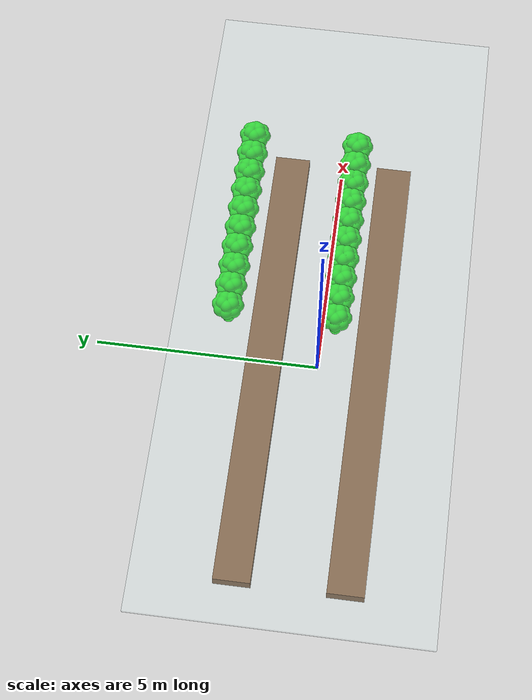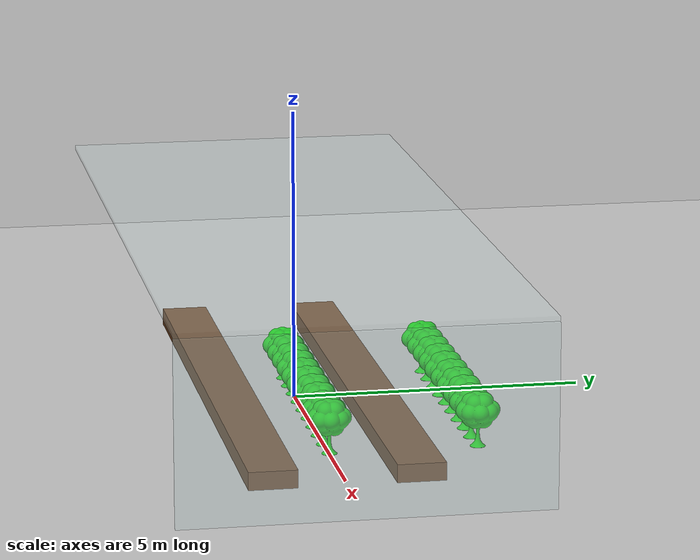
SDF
<sdf version="1.11">
 <world name="greenhouse_world">
  <model name="ground_plane">
   <static>true</static>
   <link name="link">
    <collision name="collision">
     <geometry><plane><normal>0 0 1</normal><size>300 300</size></plane></geometry>
    </collision>
    <visual name="visual">
     <geometry><plane><normal>0 0 1</normal><size>100 100</size></plane></geometry>
     <material>
      <ambient>0.8 0.8 0.8 1</ambient>
      <diffuse>0.8 0.8 0.8 1</diffuse>
      <specular>0.8 0.8 0.8 1</specular>
     </material>
    </visual>
   </link>
  </model>
  <model name="wall_front">
   <static>true</static>
   <pose>7 0 1.5 0 0 0</pose>
   <link name="link">
    <collision name="collision"><geometry><box><size>0.1 6 3.0</size></box></geometry></collision>
    <visual name="visual">
     <geometry><box><size>0.1 6 3.0</size></box></geometry>
     <material>
      <ambient>0.8 0.9 0.9 0.35</ambient>
      <diffuse>0.8 0.9 0.9 0.35</diffuse>
      <specular>0.2 0.2 0.2 0.35</specular>
     </material>
     <transparency>0.5</transparency>
    </visual>
   </link>
  </model>
  <model name="roof">
   <static>true</static>
   <pose>0 0 3.05 0 0 0</pose>
   <link name="link">
    <collision name="collision"><geometry><box><size>14 6 0.08</size></box></geometry></collision>
    <visual name="visual">
     <geometry><box><size>14 6 0.08</size></box></geometry>
     <material>
      <ambient>0.85 0.95 0.95 0.25</ambient>
      <diffuse>0.85 0.95 0.95 0.25</diffuse>
      <specular>0.2 0.2 0.2 0.25</specular>
     </material>
     <transparency>0.6</transparency>
    </visual>
   </link>
  </model>
  <model name="nursery_bed_1">
   <static>true</static>
   <pose>0 1.2 0.15 0 0 0</pose>
   <link name="link">
    <collision name="collision"><geometry><box><size>10.5 0.8 0.3</size></box></geometry></collision>
    <visual name="visual">
     <geometry><box><size>10.5 0.8 0.3</size></box></geometry>
     <material>
      <ambient>0.32 0.18 0.08 1</ambient>
      <diffuse>0.42 0.25 0.12 1</diffuse>
      <specular>0.05 0.05 0.05 1</specular>
     </material>
    </visual>
   </link>
  </model>
  <model name="nursery_bed_2">
   <static>true</static>
   <pose>0 -1.2 0.15 0 0 0</pose>
   <link name="link">
    <collision name="collision"><geometry><box><size>10.5 0.8 0.3</size></box></geometry></collision>
    <visual name="visual">
     <geometry><box><size>10.5 0.8 0.3</size></box></geometry>
     <material>
      <ambient>0.32 0.18 0.08 1</ambient>
      <diffuse>0.42 0.25 0.12 1</diffuse>
      <specular>0.05 0.05 0.05 1</specular>
     </material>
    </visual>
   </link>
  </model>
  <model name="vegetable_crop_r1_11">
   <static>true</static>
   <pose>0.25 1.2 0.30 0 0 0</pose>
   <link name="link">
    <visual name="visual">
     <geometry>
      <mesh>
       <uri>package://chaleBOT_description/worlds/models/vegetable_crop/meshes/vegetable_crop.stl</uri>
       <scale>0.001 0.001 0.001</scale>
      </mesh>
     </geometry>
     <material>
      <ambient>0.0 0.6 0.0 1</ambient>
      <diffuse>0.0 0.8 0.0 1</diffuse>
      <specular>0.1 0.1 0.1 1</specular>
     </material>
    </visual>
    <collision name="collision"><geometry><box><size>0.35 0.35 0.8</size></box></geometry></collision>
   </link>
  </model>
  <model name="vegetable_crop_r1_12">
   <static>true</static>
   <pose>0.75 1.2 0.30 0 0 0</pose>
   <link name="link">
    <visual name="visual">
     <geometry>
      <mesh>
       <uri>package://chaleBOT_description/worlds/models/vegetable_crop/meshes/vegetable_crop.stl</uri>
       <scale>0.001 0.001 0.001</scale>
      </mesh>
     </geometry>
     <material>
      <ambient>0.0 0.6 0.0 1</ambient>
      <diffuse>0.0 0.8 0.0 1</diffuse>
      <specular>0.1 0.1 0.1 1</specular>
     </material>
    </visual>
    <collision name="collision"><geometry><box><size>0.35 0.35 0.8</size></box></geometry></collision>
   </link>
  </model>
  <model name="vegetable_crop_r1_13">
   <static>true</static>
   <pose>1.25 1.2 0.30 0 0 0</pose>
   <link name="link">
    <visual name="visual">
     <geometry>
      <mesh>
       <uri>package://chaleBOT_description/worlds/models/vegetable_crop/meshes/vegetable_crop.stl</uri>
       <scale>0.001 0.001 0.001</scale>
      </mesh>
     </geometry>
     <material>
      <ambient>0.0 0.6 0.0 1</ambient>
      <diffuse>0.0 0.8 0.0 1</diffuse>
      <specular>0.1 0.1 0.1 1</specular>
     </material>
    </visual>
    <collision name="collision"><geometry><box><size>0.35 0.35 0.8</size></box></geometry></collision>
   </link>
  </model>
  <model name="vegetable_crop_r1_14">
   <static>true</static>
   <pose>1.75 1.2 0.30 0 0 0</pose>
   <link name="link">
    <visual name="visual">
     <geometry>
      <mesh>
       <uri>package://chaleBOT_description/worlds/models/vegetable_crop/meshes/vegetable_crop.stl</uri>
       <scale>0.001 0.001 0.001</scale>
      </mesh>
     </geometry>
     <material>
      <ambient>0.0 0.6 0.0 1</ambient>
      <diffuse>0.0 0.8 0.0 1</diffuse>
      <specular>0.1 0.1 0.1 1</specular>
     </material>
    </visual>
    <collision name="collision"><geometry><box><size>0.35 0.35 0.8</size></box></geometry></collision>
   </link>
  </model>
  <model name="vegetable_crop_r1_15">
   <static>true</static>
   <pose>2.25 1.2 0.30 0 0 0</pose>
   <link name="link">
    <visual name="visual">
     <geometry>
      <mesh>
       <uri>package://chaleBOT_description/worlds/models/vegetable_crop/meshes/vegetable_crop.stl</uri>
       <scale>0.001 0.001 0.001</scale>
      </mesh>
     </geometry>
     <material>
      <ambient>0.0 0.6 0.0 1</ambient>
      <diffuse>0.0 0.8 0.0 1</diffuse>
      <specular>0.1 0.1 0.1 1</specular>
     </material>
    </visual>
    <collision name="collision"><geometry><box><size>0.35 0.35 0.8</size></box></geometry></collision>
   </link>
  </model>
  <model name="vegetable_crop_r1_16">
   <static>true</static>
   <pose>2.75 1.2 0.30 0 0 0</pose>
   <link name="link">
    <visual name="visual">
     <geometry>
      <mesh>
       <uri>package://chaleBOT_description/worlds/models/vegetable_crop/meshes/vegetable_crop.stl</uri>
       <scale>0.001 0.001 0.001</scale>
      </mesh>
     </geometry>
     <material>
      <ambient>0.0 0.6 0.0 1</ambient>
      <diffuse>0.0 0.8 0.0 1</diffuse>
      <specular>0.1 0.1 0.1 1</specular>
     </material>
    </visual>
    <collision name="collision"><geometry><box><size>0.35 0.35 0.8</size></box></geometry></collision>
   </link>
  </model>
  <model name="vegetable_crop_r1_17">
   <static>true</static>
   <pose>3.25 1.2 0.30 0 0 0</pose>
   <link name="link">
    <visual name="visual">
     <geometry>
      <mesh>
       <uri>package://chaleBOT_description/worlds/models/vegetable_crop/meshes/vegetable_crop.stl</uri>
       <scale>0.001 0.001 0.001</scale>
      </mesh>
     </geometry>
     <material>
      <ambient>0.0 0.6 0.0 1</ambient>
      <diffuse>0.0 0.8 0.0 1</diffuse>
      <specular>0.1 0.1 0.1 1</specular>
     </material>
    </visual>
    <collision name="collision"><geometry><box><size>0.35 0.35 0.8</size></box></geometry></collision>
   </link>
  </model>
  <model name="vegetable_crop_r1_18">
   <static>true</static>
   <pose>3.75 1.2 0.30 0 0 0</pose>
   <link name="link">
    <visual name="visual">
     <geometry>
      <mesh>
       <uri>package://chaleBOT_description/worlds/models/vegetable_crop/meshes/vegetable_crop.stl</uri>
       <scale>0.001 0.001 0.001</scale>
      </mesh>
     </geometry>
     <material>
      <ambient>0.0 0.6 0.0 1</ambient>
      <diffuse>0.0 0.8 0.0 1</diffuse>
      <specular>0.1 0.1 0.1 1</specular>
     </material>
    </visual>
    <collision name="collision"><geometry><box><size>0.35 0.35 0.8</size></box></geometry></collision>
   </link>
  </model>
  <model name="vegetable_crop_r1_19">
   <static>true</static>
   <pose>4.25 1.2 0.30 0 0 0</pose>
   <link name="link">
    <visual name="visual">
     <geometry>
      <mesh>
       <uri>package://chaleBOT_description/worlds/models/vegetable_crop/meshes/vegetable_crop.stl</uri>
       <scale>0.001 0.001 0.001</scale>
      </mesh>
     </geometry>
     <material>
      <ambient>0.0 0.6 0.0 1</ambient>
      <diffuse>0.0 0.8 0.0 1</diffuse>
      <specular>0.1 0.1 0.1 1</specular>
     </material>
    </visual>
    <collision name="collision"><geometry><box><size>0.35 0.35 0.8</size></box></geometry></collision>
   </link>
  </model>
  <model name="vegetable_crop_r1_20">
   <static>true</static>
   <pose>4.75 1.2 0.30 0 0 0</pose>
   <link name="link">
    <visual name="visual">
     <geometry>
      <mesh>
       <uri>package://chaleBOT_description/worlds/models/vegetable_crop/meshes/vegetable_crop.stl</uri>
       <scale>0.001 0.001 0.001</scale>
      </mesh>
     </geometry>
     <material>
      <ambient>0.0 0.6 0.0 1</ambient>
      <diffuse>0.0 0.8 0.0 1</diffuse>
      <specular>0.1 0.1 0.1 1</specular>
     </material>
    </visual>
    <collision name="collision"><geometry><box><size>0.35 0.35 0.8</size></box></geometry></collision>
   </link>
  </model>
  <model name="vegetable_crop_r2_11">
   <static>true</static>
   <pose>0.25 -1.2 0.30 0 0 0</pose>
   <link name="link">
    <visual name="visual">
     <geometry>
      <mesh>
       <uri>package://chaleBOT_description/worlds/models/vegetable_crop/meshes/vegetable_crop.stl</uri>
       <scale>0.001 0.001 0.001</scale>
      </mesh>
     </geometry>
     <material>
      <ambient>0.0 0.6 0.0 1</ambient>
      <diffuse>0.0 0.8 0.0 1</diffuse>
      <specular>0.1 0.1 0.1 1</specular>
     </material>
    </visual>
    <collision name="collision"><geometry><box><size>0.35 0.35 0.8</size></box></geometry></collision>
   </link>
  </model>
  <model name="vegetable_crop_r2_12">
   <static>true</static>
   <pose>0.75 -1.2 0.30 0 0 0</pose>
   <link name="link">
    <visual name="visual">
     <geometry>
      <mesh>
       <uri>package://chaleBOT_description/worlds/models/vegetable_crop/meshes/vegetable_crop.stl</uri>
       <scale>0.001 0.001 0.001</scale>
      </mesh>
     </geometry>
     <material>
      <ambient>0.0 0.6 0.0 1</ambient>
      <diffuse>0.0 0.8 0.0 1</diffuse>
      <specular>0.1 0.1 0.1 1</specular>
     </material>
    </visual>
    <collision name="collision"><geometry><box><size>0.35 0.35 0.8</size></box></geometry></collision>
   </link>
  </model>
  <model name="vegetable_crop_r2_13">
   <static>true</static>
   <pose>1.25 -1.2 0.30 0 0 0</pose>
   <link name="link">
    <visual name="visual">
     <geometry>
      <mesh>
       <uri>package://chaleBOT_description/worlds/models/vegetable_crop/meshes/vegetable_crop.stl</uri>
       <scale>0.001 0.001 0.001</scale>
      </mesh>
     </geometry>
     <material>
      <ambient>0.0 0.6 0.0 1</ambient>
      <diffuse>0.0 0.8 0.0 1</diffuse>
      <specular>0.1 0.1 0.1 1</specular>
     </material>
    </visual>
    <collision name="collision"><geometry><box><size>0.35 0.35 0.8</size></box></geometry></collision>
   </link>
  </model>
  <model name="vegetable_crop_r2_14">
   <static>true</static>
   <pose>1.75 -1.2 0.30 0 0 0</pose>
   <link name="link">
    <visual name="visual">
     <geometry>
      <mesh>
       <uri>package://chaleBOT_description/worlds/models/vegetable_crop/meshes/vegetable_crop.stl</uri>
       <scale>0.001 0.001 0.001</scale>
      </mesh>
     </geometry>
     <material>
      <ambient>0.0 0.6 0.0 1</ambient>
      <diffuse>0.0 0.8 0.0 1</diffuse>
      <specular>0.1 0.1 0.1 1</specular>
     </material>
    </visual>
    <collision name="collision"><geometry><box><size>0.35 0.35 0.8</size></box></geometry></collision>
   </link>
  </model>
  <model name="vegetable_crop_r2_15">
   <static>true</static>
   <pose>2.25 -1.2 0.30 0 0 0</pose>
   <link name="link">
    <visual name="visual">
     <geometry>
      <mesh>
       <uri>package://chaleBOT_description/worlds/models/vegetable_crop/meshes/vegetable_crop.stl</uri>
       <scale>0.001 0.001 0.001</scale>
      </mesh>
     </geometry>
     <material>
      <ambient>0.0 0.6 0.0 1</ambient>
      <diffuse>0.0 0.8 0.0 1</diffuse>
      <specular>0.1 0.1 0.1 1</specular>
     </material>
    </visual>
    <collision name="collision"><geometry><box><size>0.35 0.35 0.8</size></box></geometry></collision>
   </link>
  </model>
  <model name="vegetable_crop_r2_16">
   <static>true</static>
   <pose>2.75 -1.2 0.30 0 0 0</pose>
   <link name="link">
    <visual name="visual">
     <geometry>
      <mesh>
       <uri>package://chaleBOT_description/worlds/models/vegetable_crop/meshes/vegetable_crop.stl</uri>
       <scale>0.001 0.001 0.001</scale>
      </mesh>
     </geometry>
     <material>
      <ambient>0.0 0.6 0.0 1</ambient>
      <diffuse>0.0 0.8 0.0 1</diffuse>
      <specular>0.1 0.1 0.1 1</specular>
     </material>
    </visual>
    <collision name="collision"><geometry><box><size>0.35 0.35 0.8</size></box></geometry></collision>
   </link>
  </model>
  <model name="vegetable_crop_r2_17">
   <static>true</static>
   <pose>3.25 -1.2 0.30 0 0 0</pose>
   <link name="link">
    <visual name="visual">
     <geometry>
      <mesh>
       <uri>package://chaleBOT_description/worlds/models/vegetable_crop/meshes/vegetable_crop.stl</uri>
       <scale>0.001 0.001 0.001</scale>
      </mesh>
     </geometry>
     <material>
      <ambient>0.0 0.6 0.0 1</ambient>
      <diffuse>0.0 0.8 0.0 1</diffuse>
      <specular>0.1 0.1 0.1 1</specular>
     </material>
    </visual>
    <collision name="collision"><geometry><box><size>0.35 0.35 0.8</size></box></geometry></collision>
   </link>
  </model>
  <model name="vegetable_crop_r2_18">
   <static>true</static>
   <pose>3.75 -1.2 0.30 0 0 0</pose>
   <link name="link">
    <visual name="visual">
     <geometry>
      <mesh>
       <uri>package://chaleBOT_description/worlds/models/vegetable_crop/meshes/vegetable_crop.stl</uri>
       <scale>0.001 0.001 0.001</scale>
      </mesh>
     </geometry>
     <material>
      <ambient>0.0 0.6 0.0 1</ambient>
      <diffuse>0.0 0.8 0.0 1</diffuse>
      <specular>0.1 0.1 0.1 1</specular>
     </material>
    </visual>
    <collision name="collision"><geometry><box><size>0.35 0.35 0.8</size></box></geometry></collision>
   </link>
  </model>
  <model name="vegetable_crop_r2_19">
   <static>true</static>
   <pose>4.25 -1.2 0.30 0 0 0</pose>
   <link name="link">
    <visual name="visual">
     <geometry>
      <mesh>
       <uri>package://chaleBOT_description/worlds/models/vegetable_crop/meshes/vegetable_crop.stl</uri>
       <scale>0.001 0.001 0.001</scale>
      </mesh>
     </geometry>
     <material>
      <ambient>0.0 0.6 0.0 1</ambient>
      <diffuse>0.0 0.8 0.0 1</diffuse>
      <specular>0.1 0.1 0.1 1</specular>
     </material>
    </visual>
    <collision name="collision"><geometry><box><size>0.35 0.35 0.8</size></box></geometry></collision>
   </link>
  </model>
  <model name="vegetable_crop_r2_20">
   <static>true</static>
   <pose>4.75 -1.2 0.30 0 0 0</pose>
   <link name="link">
    <visual name="visual">
     <geometry>
      <mesh>
       <uri>package://chaleBOT_description/worlds/models/vegetable_crop/meshes/vegetable_crop.stl</uri>
       <scale>0.001 0.001 0.001</scale>
      </mesh>
     </geometry>
     <material>
      <ambient>0.0 0.6 0.0 1</ambient>
      <diffuse>0.0 0.8 0.0 1</diffuse>
      <specular>0.1 0.1 0.1 1</specular>
     </material>
    </visual>
    <collision name="collision"><geometry><box><size>0.35 0.35 0.8</size></box></geometry></collision>
   </link>
  </model>
 </world>
</sdf>
